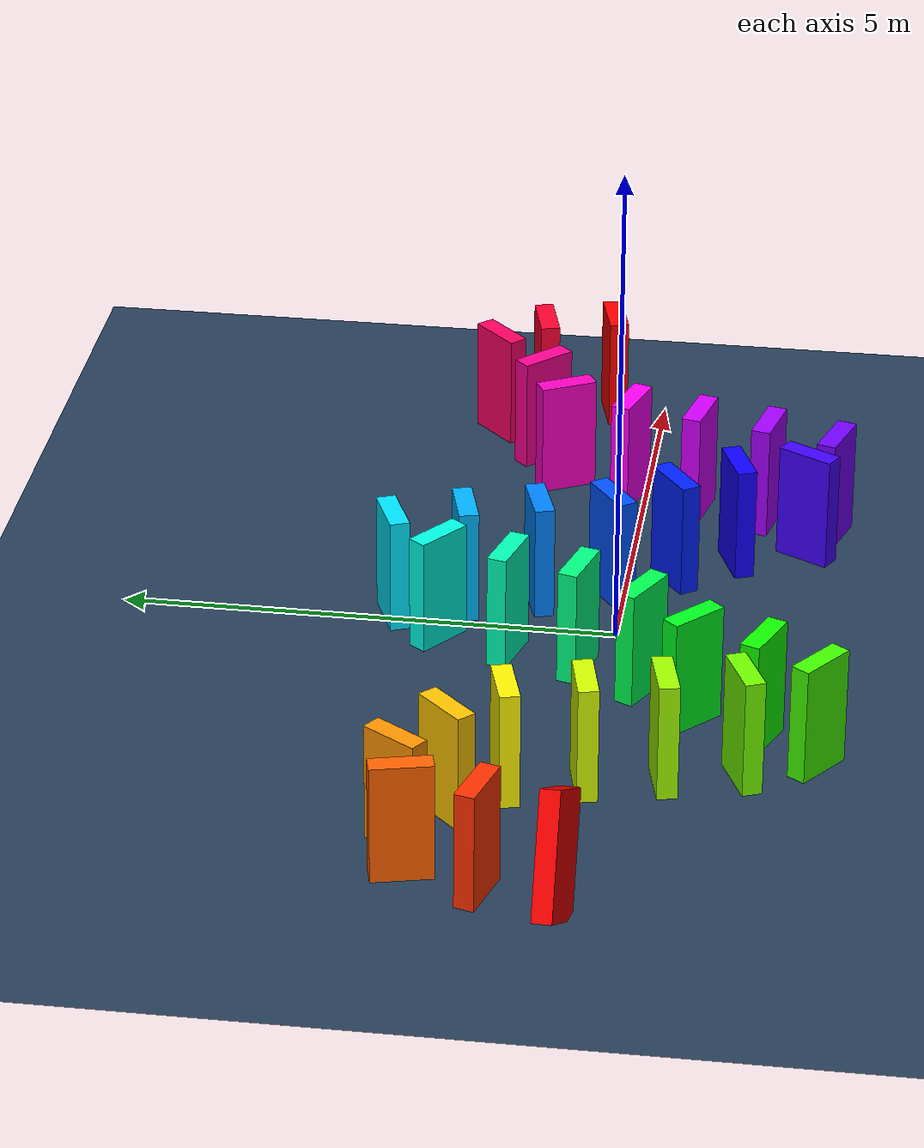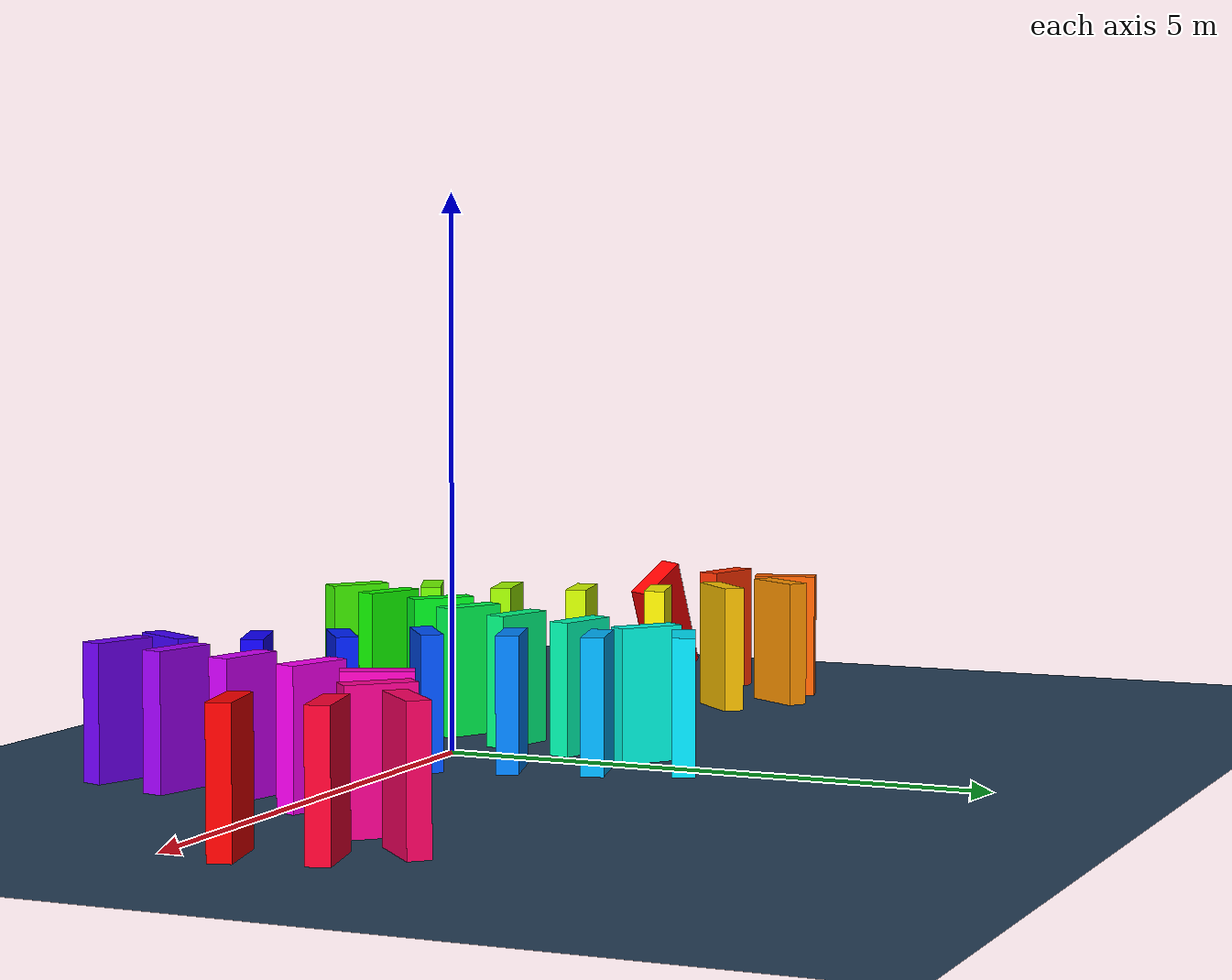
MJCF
<mujoco>
  <visual>
    <headlight diffuse="0.6 0.6 0.6" ambient="0.1 0.1 0.1" specular="0 0 0"/>
    <rgba haze="0.15 0.25 0.35 1"/>
    <global azimuth="120" elevation="-20"/>
  </visual>
  <asset>
    <texture type="skybox" builtin="gradient" rgb1="0.3 0.5 0.7" rgb2="0 0 0" width="512" height="3072"/>
    <texture type="2d" name="groundplane" builtin="checker" mark="edge" rgb1="0.2 0.3 0.4" rgb2="0.1 0.2 0.3" markrgb="0.8 0.8 0.8" width="300" height="300"/>
    <material name="groundplane" texture="groundplane" texuniform="true" texrepeat="5 5" reflectance="0.2"/>
  </asset>
  <worldbody>
    <light pos="0 0 1.5" dir="0 0 -1" directional="true"/>
    <geom name="floor" size="0 0 0.05" type="plane" material="groundplane"/>
    <body name="trigger" pos="-5.0000 0.0000 0.5767" euler="0 28.0 78.0">
      <geom type="box" size="0.1000 0.3000 0.6000" rgba="1.000 0.000 0.000 1"/>
      <freejoint/>
    </body>
    <body name="domino_001" pos="-4.8441 0.7336 0.6000" euler="0 0.0 74.4">
      <geom type="box" size="0.1000 0.3000 0.6000" rgba="1.000 0.194 0.000 1"/>
      <freejoint/>
    </body>
    <body name="domino_002" pos="-4.6425 1.4554 0.6000" euler="0 0.0 14.3">
      <geom type="box" size="0.1000 0.3000 0.6000" rgba="1.000 0.387 0.000 1"/>
      <freejoint/>
    </body>
    <body name="domino_003" pos="-4.1449 1.5818 0.6000" euler="0 0.0 -33.7">
      <geom type="box" size="0.1000 0.3000 0.6000" rgba="1.000 0.581 0.000 1"/>
      <freejoint/>
    </body>
    <body name="domino_004" pos="-3.5589 1.1913 0.6000" euler="0 0.0 -44.7">
      <geom type="box" size="0.1000 0.3000 0.6000" rgba="1.000 0.774 0.000 1"/>
      <freejoint/>
    </body>
    <body name="domino_005" pos="-3.0753 0.7123 0.6000" euler="0 0.0 -74.5">
      <geom type="box" size="0.1000 0.3000 0.6000" rgba="1.000 0.968 0.000 1"/>
      <freejoint/>
    </body>
    <body name="domino_006" pos="-2.8754 -0.0102 0.6000" euler="0 0.0 -77.5">
      <geom type="box" size="0.1000 0.3000 0.6000" rgba="0.839 1.000 0.000 1"/>
      <freejoint/>
    </body>
    <body name="domino_007" pos="-2.7129 -0.7424 0.6000" euler="0 0.0 -76.9">
      <geom type="box" size="0.1000 0.3000 0.6000" rgba="0.645 1.000 0.000 1"/>
      <freejoint/>
    </body>
    <body name="domino_008" pos="-2.5424 -1.4727 0.6000" euler="0 0.0 -66.5">
      <geom type="box" size="0.1000 0.3000 0.6000" rgba="0.452 1.000 0.000 1"/>
      <freejoint/>
    </body>
    <body name="domino_009" pos="-2.2479 -2.1504 0.6000" euler="0 0.0 54.3">
      <geom type="box" size="0.1000 0.3000 0.6000" rgba="0.258 1.000 0.000 1"/>
      <freejoint/>
    </body>
    <body name="domino_010" pos="-1.8445 -1.5888 0.6000" euler="0 0.0 67.9">
      <geom type="box" size="0.1000 0.3000 0.6000" rgba="0.065 1.000 0.000 1"/>
      <freejoint/>
    </body>
    <body name="domino_011" pos="-1.5627 -0.8942 0.6000" euler="0 0.0 46.9">
      <geom type="box" size="0.1000 0.3000 0.6000" rgba="0.000 1.000 0.129 1"/>
      <freejoint/>
    </body>
    <body name="domino_012" pos="-1.0581 -0.3547 0.6000" euler="0 0.0 62.2">
      <geom type="box" size="0.1000 0.3000 0.6000" rgba="0.000 1.000 0.323 1"/>
      <freejoint/>
    </body>
    <body name="domino_013" pos="-0.7115 0.3020 0.6000" euler="0 0.0 74.1">
      <geom type="box" size="0.1000 0.3000 0.6000" rgba="0.000 1.000 0.516 1"/>
      <freejoint/>
    </body>
    <body name="domino_014" pos="-0.5059 1.0231 0.6000" euler="0 0.0 74.7">
      <geom type="box" size="0.1000 0.3000 0.6000" rgba="0.000 1.000 0.710 1"/>
      <freejoint/>
    </body>
    <body name="domino_015" pos="-0.3082 1.7466 0.6000" euler="0 0.0 52.8">
      <geom type="box" size="0.1000 0.3000 0.6000" rgba="0.000 1.000 0.903 1"/>
      <freejoint/>
    </body>
    <body name="domino_016" pos="0.0804 2.2590 0.6000" euler="0 0.0 -67.9">
      <geom type="box" size="0.1000 0.3000 0.6000" rgba="0.000 0.903 1.000 1"/>
      <freejoint/>
    </body>
    <body name="domino_017" pos="0.3604 1.5687 0.6000" euler="0 0.0 -75.1">
      <geom type="box" size="0.1000 0.3000 0.6000" rgba="0.000 0.710 1.000 1"/>
      <freejoint/>
    </body>
    <body name="domino_018" pos="0.5533 0.8440 0.6000" euler="0 0.0 -72.9">
      <geom type="box" size="0.1000 0.3000 0.6000" rgba="0.000 0.516 1.000 1"/>
      <freejoint/>
    </body>
    <body name="domino_019" pos="0.7734 0.1273 0.6000" euler="0 0.0 -53.9">
      <geom type="box" size="0.1000 0.3000 0.6000" rgba="0.000 0.323 1.000 1"/>
      <freejoint/>
    </body>
    <body name="domino_020" pos="1.2057 -0.4664 0.6000" euler="0 0.0 -53.9">
      <geom type="box" size="0.1000 0.3000 0.6000" rgba="0.000 0.129 1.000 1"/>
      <freejoint/>
    </body>
    <body name="domino_021" pos="1.6401 -1.0625 0.6000" euler="0 0.0 -68.7">
      <geom type="box" size="0.1000 0.3000 0.6000" rgba="0.064 0.000 1.000 1"/>
      <freejoint/>
    </body>
    <body name="domino_022" pos="1.9124 -1.7613 0.6000" euler="0 0.0 -28.7">
      <geom type="box" size="0.1000 0.3000 0.6000" rgba="0.258 0.000 1.000 1"/>
      <freejoint/>
    </body>
    <body name="domino_023" pos="2.3610 -2.0065 0.6000" euler="0 0.0 72.4">
      <geom type="box" size="0.1000 0.3000 0.6000" rgba="0.452 0.000 1.000 1"/>
      <freejoint/>
    </body>
    <body name="domino_024" pos="2.5877 -1.2930 0.6000" euler="0 0.0 77.3">
      <geom type="box" size="0.1000 0.3000 0.6000" rgba="0.645 0.000 1.000 1"/>
      <freejoint/>
    </body>
    <body name="domino_025" pos="2.7523 -0.5613 0.6000" euler="0 0.0 77.2">
      <geom type="box" size="0.1000 0.3000 0.6000" rgba="0.839 0.000 1.000 1"/>
      <freejoint/>
    </body>
    <body name="domino_026" pos="2.9187 0.1700 0.6000" euler="0 0.0 72.5">
      <geom type="box" size="0.1000 0.3000 0.6000" rgba="1.000 0.000 0.968 1"/>
      <freejoint/>
    </body>
    <body name="domino_027" pos="3.1437 0.8844 0.6000" euler="0 0.0 27.7">
      <geom type="box" size="0.1000 0.3000 0.6000" rgba="1.000 0.000 0.774 1"/>
      <freejoint/>
    </body>
    <body name="domino_028" pos="3.7430 1.1990 0.6000" euler="0 0.0 44.7">
      <geom type="box" size="0.1000 0.3000 0.6000" rgba="1.000 0.000 0.581 1"/>
      <freejoint/>
    </body>
    <body name="domino_029" pos="4.2688 1.7193 0.6000" euler="0 0.0 -45.4">
      <geom type="box" size="0.1000 0.3000 0.6000" rgba="1.000 0.000 0.387 1"/>
      <freejoint/>
    </body>
    <body name="domino_030" pos="4.7023 1.2801 0.6000" euler="0 0.0 -76.0">
      <geom type="box" size="0.1000 0.3000 0.6000" rgba="1.000 0.000 0.194 1"/>
      <freejoint/>
    </body>
    <body name="domino_031" pos="4.8843 0.5527 0.6000" euler="0 0.0 -76.0">
      <geom type="box" size="0.1000 0.3000 0.6000" rgba="1.000 0.000 0.000 1"/>
      <freejoint/>
    </body>
  </worldbody>
</mujoco>
